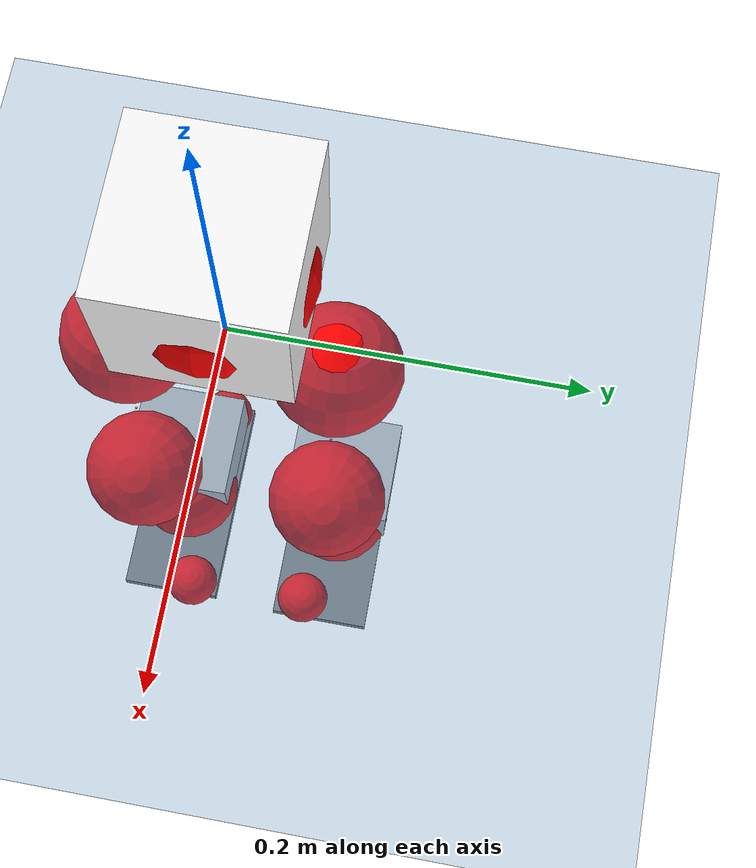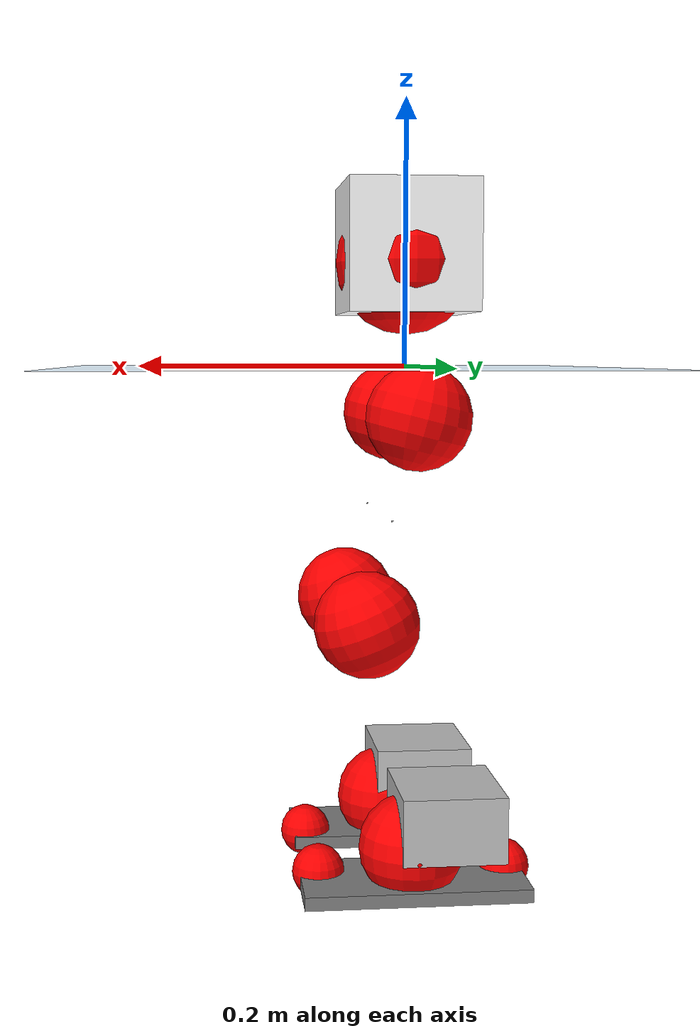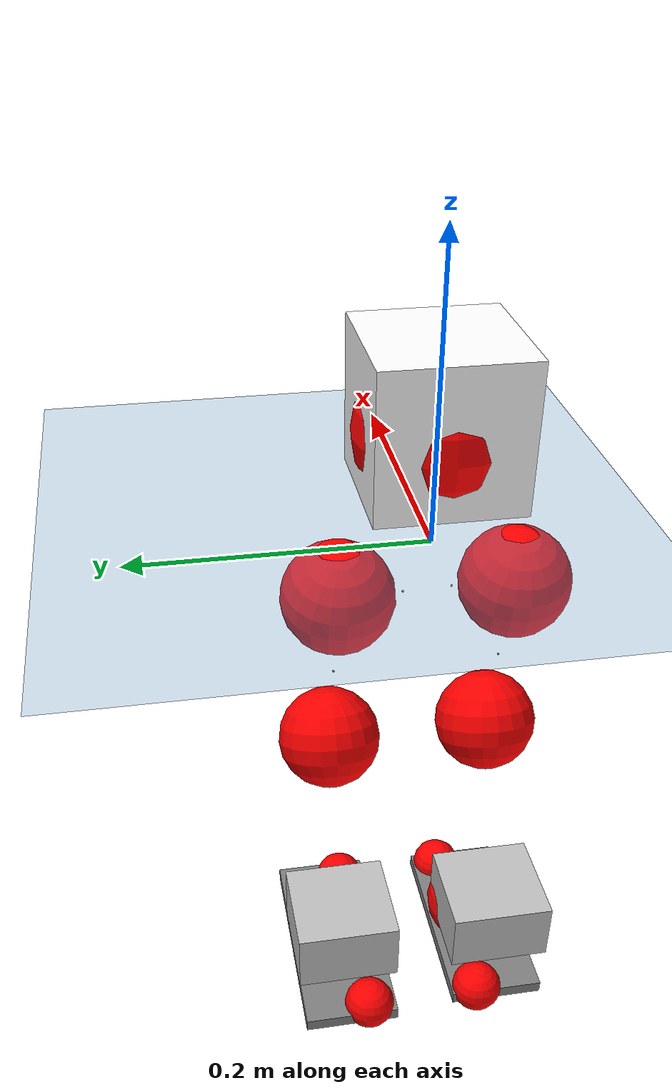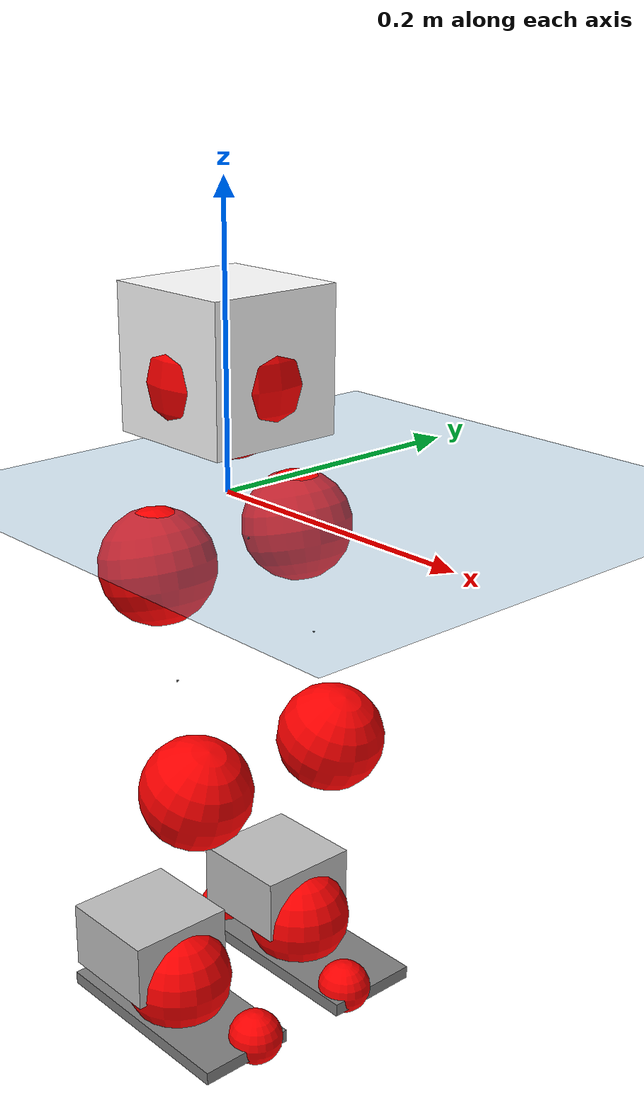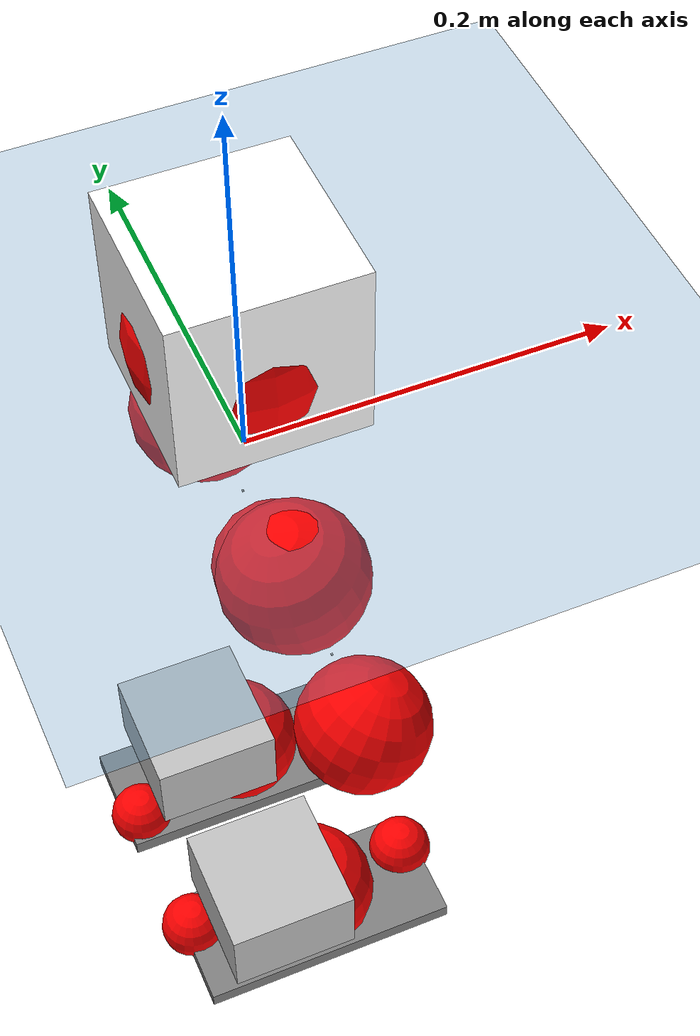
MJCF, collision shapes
<mujoco model="pi_12dof_release_v1">
  <compiler angle="radian" assetdir="assets" balanceinertia="true" inertiafromgeom="false"/>

  <option timestep="0.005" density="1.2" viscosity="2e-05"/>

  <size nkey="1"/>

  <visual>
    <quality shadowsize="8192"/>
    <map shadowclip="0.5"/>
  </visual>

  <default>
    <default class="/">
      <joint armature="0.01" damping="0.01" frictionloss="0.01"/>
      <geom contype="0" conaffinity="0" group="1" solref="-1000 -80"/>
      <site size="0.01 0.005 0.005" group="5"/>
      <general forcelimited="true" biastype="affine" gainprm="20" biasprm="0 -20 -0.5"/>
      <default class="foot">
        <geom size="0.0845 0.036 0.005" type="box" condim="6" group="4" priority="1" friction="0.9 0.2 0.2" solimp="0.015 1 0.005"/>
      </default>
      <default class="reward_collision_sphere">
        <geom group="5" rgba="1 0 0 1"/>
      </default>
    </default>
  </default>

  <asset>
    <texture type="skybox" colorspace="auto" name="//unnamed_texture_0" builtin="gradient" rgb1="0.95 0.95 0.95" rgb2="0.95 0.95 0.95" width="100" height="600"/>
    <texture type="2d" colorspace="auto" name="texplane" builtin="checker" rgb1="0.345 0.575 0.748" rgb2="0.345 0.575 0.748" markrgb="1 1 1" width="512" height="512"/>
    <material name="MatPlane" class="/" texture="texplane" texuniform="true" texrepeat="2 2" specular="0.9"/>
    <mesh name="baselink_1" class="/" file="baselink_1.STL"/>
    <mesh name="r_hip_pitch_link" class="/" file="r_hip_pitch_link.STL"/>
    <mesh name="r_hip_roll_link" class="/" file="r_hip_roll_link.STL"/>
    <mesh name="r_thigh_link" class="/" file="r_thigh_link.STL"/>
    <mesh name="r_calf_link" class="/" file="r_calf_link.STL"/>
    <mesh name="r_ankle_pitch_link" class="/" file="r_ankle_pitch_link.STL"/>
    <mesh name="r_ankle_roll_link" class="/" file="r_ankle_roll_link.STL"/>
    <mesh name="l_hip_pitch_link" class="/" file="l_hip_pitch_link.STL"/>
    <mesh name="l_hip_roll_link" class="/" file="l_hip_roll_link.STL"/>
    <mesh name="l_thigh_link" class="/" file="l_thigh_link.STL"/>
    <mesh name="l_calf_link" class="/" file="l_calf_link.STL"/>
    <mesh name="l_ankle_pitch_link" class="/" file="l_ankle_pitch_link.STL"/>
    <mesh name="l_ankle_roll_link" class="/" file="l_ankle_roll_link.STL"/>
  </asset>

  <worldbody>
    <geom name="floor" class="/" size="100 100 0.125" type="plane" group="0" material="MatPlane"/>
    <light name="toplight_shadow" class="/" pos="0 0 5" dir="0.0990148 0.0990148 -0.990148" type="directional" ambient="0.04 0.04 0.04" diffuse="0.55 0.55 0.55" specular="0.12 0.12 0.12"/>
    <light name="toplight_fill" class="/" pos="0 0 5" dir="0.0990148 0.0990148 -0.990148" type="directional" castshadow="false" ambient="0.04 0.04 0.04" diffuse="0.3 0.3 0.3" specular="0.08 0.08 0.08"/>
    <body name="trunk" pos="-0.000205713 0.000877177 -0.000191075" quat="1 0.000410862 0.000121928 -7.95441e-05">
      <inertial pos="0.00316247 -0.00130252 0.0436896" quat="0.692929 0.00814853 0.00744099 0.720921" mass="1.91988" diaginertia="0.0111841 0.00236544 0.00667732"/>
      <joint name="//unnamed_joint_0" type="free"/>
      <geom name="//unnamed_geom_1" class="/" type="mesh" density="0" rgba="1 1 1 1" mesh="baselink_1"/>
      <geom name="//unnamed_geom_2" class="/" size="0.0482946 0.0482946 0.0482946" pos="0 0 0.0881364" type="box" rgba="1 1 1 1"/>
      <geom name="//unnamed_geom_3" class="reward_collision_sphere" size="0.0531241" pos="0 0 0.0771193"/>
      <site name="imu" class="/" pos="0.000675014 -0.00147797 -0.00147034" size="0.00965893"/>
      <camera name="track" class="/" pos="0 -1.53217 0" quat="0.707107 0.707107 0 0" mode="trackcom"/>
      <camera name="ego_camera" class="/" pos="0.0772416 0 0.198307" quat="-0.5 -0.5 0.5 0.5"/>
      <body name="r_hip_pitch_link" pos="0.0010631 -0.0169009 -0.0360226" quat="0.992198 3.27842e-06 -0.124674 0.000174538">
        <inertial pos="0.00102148 -0.0428635 -0.000433828" quat="-0.0189248 0.707291 -0.0331518 0.705891" mass="0.335732" diaginertia="0.000127032 2.62235e-05 0.000136062"/>
        <joint name="r_hip_pitch_joint" class="/" pos="0 0 0" axis="-0.00214912 -0.999995 -0.00214701" stiffness="0.000937257" range="-1.76657 1.23353" armature="0.00978598" damping="0.0143333" frictionloss="0.0097814"/>
        <geom name="//unnamed_geom_4" class="/" type="mesh" density="0" rgba="0.75294 0.75294 0.75294 1" mesh="r_hip_pitch_link"/>
        <geom name="//unnamed_geom_5" class="/" size="0.000482946 0.000482946 0.000482946" type="box" rgba="0.75294 0.75294 0.75294 1"/>
        <body name="r_hip_roll_link" pos="5.88407e-05 -0.0436013 -0.000591989" quat="1 -0.000154824 -0.00018955 -0.000114764">
          <inertial pos="-0.00106644 0.000455898 -0.0678412" quat="0.705607 -0.0785199 -0.0813412 0.699526" mass="0.347235" diaginertia="0.000388377 7.40074e-05 0.000208704"/>
          <joint name="r_hip_roll_joint" class="/" pos="0 0 0" axis="-0.999996 -0.00124989 -0.00237183" range="-0.118878 0.492557" armature="0.00933226" damping="0.00550196" frictionloss="0.00973514"/>
          <geom name="//unnamed_geom_6" class="/" type="mesh" density="0" rgba="0.75294 0.75294 0.75294 1" mesh="r_hip_roll_link"/>
          <geom name="//unnamed_geom_7" class="/" size="0.000482946 0.000482946 0.000482946" type="box" rgba="0.75294 0.75294 0.75294 1"/>
          <geom name="//unnamed_geom_8" class="reward_collision_sphere" size="0.0386357"/>
          <body name="r_thigh_link" pos="-2.04258e-06 -0.000894806 -0.0764743" quat="1 4.47563e-05 5.62909e-06 8.50272e-05">
            <inertial pos="0.000524689 0.0013146 -0.0518856" quat="0.737375 0.675484 -0.000333291 -9.00886e-05" mass="0.102728" diaginertia="0.000146498 2.53201e-05 9.52265e-05"/>
            <joint name="r_thigh_joint" class="/" pos="0 0 0" axis="0.000330909 0.00328005 -0.999995" range="-0.311936 0.582106" armature="0.00944805" damping="0" frictionloss="0.00986801"/>
            <geom name="//unnamed_geom_9" class="/" type="mesh" density="0" rgba="0.75294 0.75294 0.75294 1" mesh="r_thigh_link"/>
            <geom name="//unnamed_geom_10" class="/" size="0.000482946 0.000482946 0.000482946" type="box" rgba="0.75294 0.75294 0.75294 1"/>
            <body name="r_calf_link" pos="-0.00120049 -0.000727141 -0.0768899" quat="0.947723 -7.40921e-05 0.319093 -5.84119e-05">
              <inertial pos="-0.000933986 -0.00115771 -0.0766994" quat="0.999984 -0.00301723 0.000187419 0.00484763" mass="0.736565" diaginertia="0.00412997 0.000923751 0.000283811"/>
              <joint name="r_calf_joint" class="/" pos="0 0 0" axis="0.00450182 -0.99998 -0.00435602" range="-1.63488 0.640031" armature="0.00962549" damping="0.0129588" frictionloss="0.00970913"/>
              <geom name="//unnamed_geom_11" class="/" type="mesh" density="0" rgba="0.75294 0.75294 0.75294 1" mesh="r_calf_link"/>
              <geom name="//unnamed_geom_12" class="/" size="0.000482946 0.000482946 0.000482946" type="box" rgba="0.75294 0.75294 0.75294 1"/>
              <geom name="//unnamed_geom_13" class="reward_collision_sphere" size="0.0386357"/>
              <body name="r_ankle_pitch_link" pos="0.000967392 0.00138344 -0.154821" quat="0.980072 2.31501e-05 -0.198643 7.9579e-07">
                <inertial pos="0.00432884 0.00365821 6.22597e-05" quat="0.00232397 0.706967 -0.00202172 0.70724" mass="0.158986" diaginertia="0.000360116 5.85145e-05 0.000194413"/>
                <joint name="r_ankle_pitch_joint" class="/" pos="0 0 0" axis="0.000583346 -0.999999 -0.00156729" range="-1.28108 0.496853" armature="0.00950916" damping="0.00909438" frictionloss="0.00962821"/>
                <geom name="//unnamed_geom_14" class="/" type="mesh" density="0" rgba="0.75294 0.75294 0.75294 1" mesh="r_ankle_pitch_link"/>
                <geom name="//unnamed_geom_15" class="/" size="0.0376698 0.0386357 0.0241473" type="box" rgba="0.75294 0.75294 0.75294 1"/>
                <body name="r_ankle_roll_link" pos="0.0783166 0.00381326 0.000296062" quat="1 0.000120353 0.000113587 -5.09115e-05">
                  <inertial pos="-0.0236161 -0.000862707 -0.0161873" quat="0.55871 0.432244 0.433976 0.559172" mass="0.47165" diaginertia="0.00132685 0.000271752 0.000469051"/>
                  <joint name="r_ankle_roll_joint" class="/" pos="0 0 0" axis="-0.999991 0.00219651 0.00373283" range="-0.135192 0.140613" armature="0.0097891" damping="0.00242867" frictionloss="0.0097382"/>
                  <geom name="//unnamed_geom_16" class="/" type="mesh" density="0" rgba="0.75294 0.75294 0.75294 1" mesh="r_ankle_roll_link"/>
                  <geom name="//unnamed_geom_17" class="/" type="mesh" rgba="0.75294 0.75294 0.75294 1" mesh="r_ankle_roll_link"/>
                  <geom name="right_foot" class="foot" size="0.0773964 0.0356673 0.00475335" pos="-0.0525243 0 -0.048475"/>
                  <geom name="//unnamed_geom_19" class="reward_collision_sphere" size="0.0386357" pos="-0.0514944 0 -0.0220341"/>
                  <geom name="//unnamed_geom_20" class="reward_collision_sphere" size="0.0193179" pos="0.0154483 0.0153217 -0.0440682"/>
                  <geom name="//unnamed_geom_21" class="reward_collision_sphere" size="0.0193179" pos="-0.123587 0.0153217 -0.0440682"/>
                  <site name="right_foot" class="foot" pos="-0.0525243 0 -0.048475" size="0.00965893"/>
                </body>
              </body>
            </body>
          </body>
        </body>
      </body>
      <body name="l_hip_pitch_link" pos="-0.000525859 0.0168515 -0.0361888" quat="0.992167 2.60623e-05 -0.124919 1.2767e-05">
        <inertial pos="0.00146165 0.0407368 -0.00117227" quat="-0.0390269 0.707197 0.0287696 0.705352" mass="0.348563" diaginertia="0.000148273 2.80638e-05 0.000162208"/>
        <joint name="l_hip_pitch_joint" class="/" pos="0 0 0" axis="-0.000153149 1 7.70796e-06" range="-1.24603 1.74843" armature="0.00977598" damping="0.0103865" frictionloss="0.00959769"/>
        <geom name="//unnamed_geom_22" class="/" type="mesh" density="0" rgba="0.75294 0.75294 0.75294 1" mesh="l_hip_pitch_link"/>
        <geom name="//unnamed_geom_23" class="/" size="0.000482946 0.000482946 0.000482946" type="box" rgba="0.75294 0.75294 0.75294 1"/>
        <body name="l_hip_roll_link" pos="0.000283326 0.0438278 7.62929e-05" quat="1 2.9537e-05 -2.38364e-05 0.000142405">
          <inertial pos="-0.000641169 0.0008598 -0.0671472" quat="0.699445 -0.0722739 -0.0795133 0.706563" mass="0.347771" diaginertia="0.000390175 7.24789e-05 0.0002084"/>
          <joint name="l_hip_roll_joint" class="/" pos="0 0 0" axis="-0.999985 -0.00484129 -0.00237412" range="-0.5019 0.119324" armature="0.00995243" damping="0.00406948" frictionloss="0.0100673"/>
          <geom name="//unnamed_geom_24" class="/" type="mesh" density="0" rgba="0.75294 0.75294 0.75294 1" mesh="l_hip_roll_link"/>
          <geom name="//unnamed_geom_25" class="/" size="0.000482946 0.000482946 0.000482946" type="box" rgba="0.75294 0.75294 0.75294 1"/>
          <geom name="//unnamed_geom_26" class="reward_collision_sphere" size="0.0386357"/>
          <body name="l_thigh_link" pos="-0.000285142 -0.000421265 -0.0768351" quat="1 7.59416e-05 0.000336675 2.4587e-05">
            <inertial pos="0.000590583 -0.00197523 -0.0529906" quat="0.67596 0.736937 0.000750819 -0.00110624" mass="0.101747" diaginertia="0.000146899 2.53276e-05 9.51519e-05"/>
            <joint name="l_thigh_joint" class="/" pos="0 0 0" axis="6.05489e-05 -5.05881e-05 -1" range="-0.597897 0.30568" armature="0.0100823" damping="0.00307502" frictionloss="0.00970425"/>
            <geom name="//unnamed_geom_27" class="/" type="mesh" density="0" rgba="0.75294 0.75294 0.75294 1" mesh="l_thigh_link"/>
            <geom name="//unnamed_geom_28" class="/" size="0.000482946 0.000482946 0.000482946" type="box" rgba="0.75294 0.75294 0.75294 1"/>
            <body name="l_calf_link" pos="-0.000967841 9.33362e-06 -0.0769453" quat="0.947528 -0.000344762 0.319672 8.25793e-05">
              <inertial pos="0.00022491 0.00237364 -0.0775901" quat="0.999981 0.00341785 -0.000868103 0.00504252" mass="0.739264" diaginertia="0.00411913 0.000934044 0.000289421"/>
              <joint name="l_calf_joint" class="/" pos="0 0 0" axis="-0.00224635 0.999997 -0.000666106" range="-0.655524 1.6513" armature="0.0100057" damping="0.00900156" frictionloss="0.00981479"/>
              <geom name="//unnamed_geom_29" class="/" type="mesh" density="0" rgba="0.75294 0.75294 0.75294 1" mesh="l_calf_link"/>
              <geom name="//unnamed_geom_30" class="/" size="0.000482946 0.000482946 0.000482946" type="box" rgba="0.75294 0.75294 0.75294 1"/>
              <geom name="//unnamed_geom_31" class="reward_collision_sphere" size="0.0386357"/>
              <body name="l_ankle_pitch_link" pos="0.00143678 0.000442812 -0.154015" quat="0.980095 -3.12898e-05 -0.198531 1.41976e-06">
                <inertial pos="0.00509768 -1.72674e-05 -0.000526648" quat="-0.000872417 0.706785 0.00235117 0.707424" mass="0.159973" diaginertia="0.000358904 5.86717e-05 0.000197805"/>
                <joint name="l_ankle_pitch_joint" class="/" pos="0 0 0" axis="8.50967e-05 1 0.000875762" range="-0.513835 1.30095" armature="0.00967541" damping="0.00511695" frictionloss="0.0100934"/>
                <geom name="//unnamed_geom_32" class="/" type="mesh" density="0" rgba="0.75294 0.75294 0.75294 1" mesh="l_ankle_pitch_link"/>
                <geom name="//unnamed_geom_33" class="/" size="0.0376698 0.0386357 0.0241473" type="box" rgba="0.75294 0.75294 0.75294 1"/>
                <body name="l_ankle_roll_link" pos="0.077256 0.000297528 -0.000559714" quat="1 -5.01338e-05 6.92623e-06 1.36797e-06">
                  <inertial pos="-0.0240069 -0.000525644 -0.0157738" quat="0.559473 0.430992 0.434238 0.559173" mass="0.462904" diaginertia="0.00131806 0.000270199 0.00046136"/>
                  <joint name="l_ankle_roll_joint" class="/" pos="0 0 0" axis="-0.999999 -0.000338632 -0.00116316" stiffness="0.000300219" range="-0.142416 0.153722" armature="0.00950135" damping="0.00378656" frictionloss="0.00971734"/>
                  <geom name="//unnamed_geom_34" class="/" type="mesh" density="0" rgba="0.75294 0.75294 0.75294 1" mesh="l_ankle_roll_link"/>
                  <geom name="//unnamed_geom_35" class="/" type="mesh" rgba="0.75294 0.75294 0.75294 1" mesh="l_ankle_roll_link"/>
                  <geom name="left_foot" class="foot" size="0.0821731 0.0359958 0.00484164" pos="-0.0525243 0 -0.048475"/>
                  <geom name="//unnamed_geom_37" class="reward_collision_sphere" size="0.0386357" pos="-0.0514944 0 -0.0220341"/>
                  <geom name="//unnamed_geom_38" class="reward_collision_sphere" size="0.0193179" pos="0.0154483 -0.0153217 -0.0440682"/>
                  <geom name="//unnamed_geom_39" class="reward_collision_sphere" size="0.0193179" pos="-0.123587 -0.0153217 -0.0440682"/>
                  <site name="left_foot" class="foot" pos="-0.0525243 0 -0.048475" size="0.00965893"/>
                </body>
              </body>
            </body>
          </body>
        </body>
      </body>
    </body>
  </worldbody>

  <contact>
    <pair class="/" geom1="floor" geom2="right_foot" name="//unnamed_contact_1"/>
    <pair class="/" geom1="floor" geom2="left_foot" name="//unnamed_contact_0"/>
  </contact>

  <actuator>
    <general name="r_hip_pitch_joint" class="/" joint="r_hip_pitch_joint" forcerange="-20.5797 20.5797" gainprm="19.6783" biasprm="0 -19.6783 -0.468837"/>
    <general name="r_hip_roll_joint" class="/" joint="r_hip_roll_joint" forcerange="-20.8651 20.8651" gainprm="19.6783" biasprm="0 -19.6783 -0.468837"/>
    <general name="r_thigh_joint" class="/" joint="r_thigh_joint" forcerange="-20.3459 20.3459" gainprm="19.6783" biasprm="0 -19.6783 -0.468837"/>
    <general name="r_calf_joint" class="/" joint="r_calf_joint" forcerange="-20.0445 20.0445" gainprm="19.6783" biasprm="0 -19.6783 -0.468837"/>
    <general name="r_ankle_pitch_joint" class="/" joint="r_ankle_pitch_joint" forcerange="-20.3048 20.3048" gainprm="19.6783" biasprm="0 -19.6783 -0.468837"/>
    <general name="r_ankle_roll_joint" class="/" joint="r_ankle_roll_joint" forcerange="-19.7514 19.7514" gainprm="19.6783" biasprm="0 -19.6783 -0.468837"/>
    <general name="l_hip_pitch_joint" class="/" joint="l_hip_pitch_joint" forcerange="-19.7885 19.7885" gainprm="19.6783" biasprm="0 -19.6783 -0.468837"/>
    <general name="l_hip_roll_joint" class="/" joint="l_hip_roll_joint" forcerange="-20.4021 20.4021" gainprm="19.6783" biasprm="0 -19.6783 -0.468837"/>
    <general name="l_thigh_joint" class="/" joint="l_thigh_joint" forcerange="-20.1306 20.1306" gainprm="19.6783" biasprm="0 -19.6783 -0.468837"/>
    <general name="l_calf_joint" class="/" joint="l_calf_joint" forcerange="-20.831 20.831" gainprm="19.6783" biasprm="0 -19.6783 -0.468837"/>
    <general name="l_ankle_pitch_joint" class="/" joint="l_ankle_pitch_joint" forcerange="-20.3665 20.3665" gainprm="19.6783" biasprm="0 -19.6783 -0.468837"/>
    <general name="l_ankle_roll_joint" class="/" joint="l_ankle_roll_joint" forcerange="-20.8463 20.8463" gainprm="19.6783" biasprm="0 -19.6783 -0.468837"/>
  </actuator>

  <sensor>
    <gyro site="imu" name="imu_angular_velocity"/>
    <velocimeter site="imu" name="imu_linear_velocity"/>
    <framelinvel objtype="site" objname="left_foot" name="left_foot_global_linear_velocity"/>
    <framelinvel objtype="site" objname="right_foot" name="right_foot_global_linear_velocity"/>
  </sensor>

  <keyframe>
    <key name="home" qpos="0 0 0.291 1 0 0 0 0.4 0 0 -0.8 0.4 0 -0.4 0 0 0.8 -0.4 0"/>
  </keyframe>
</mujoco>
